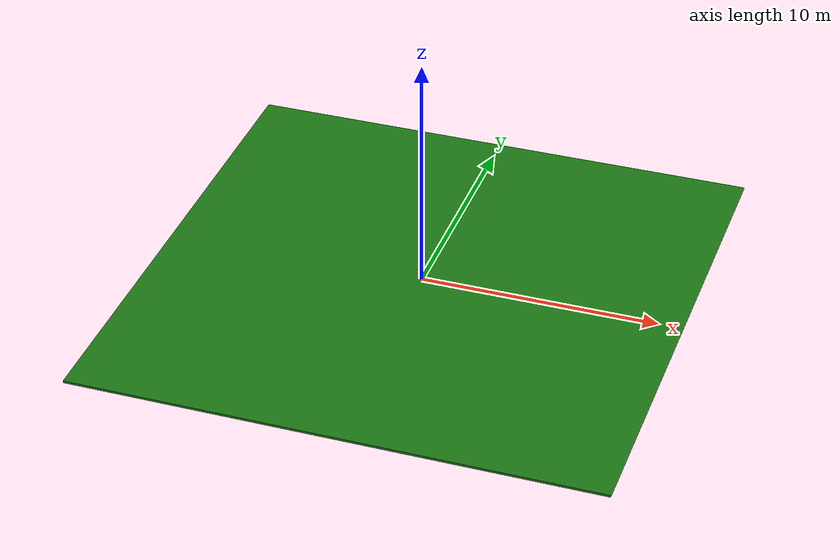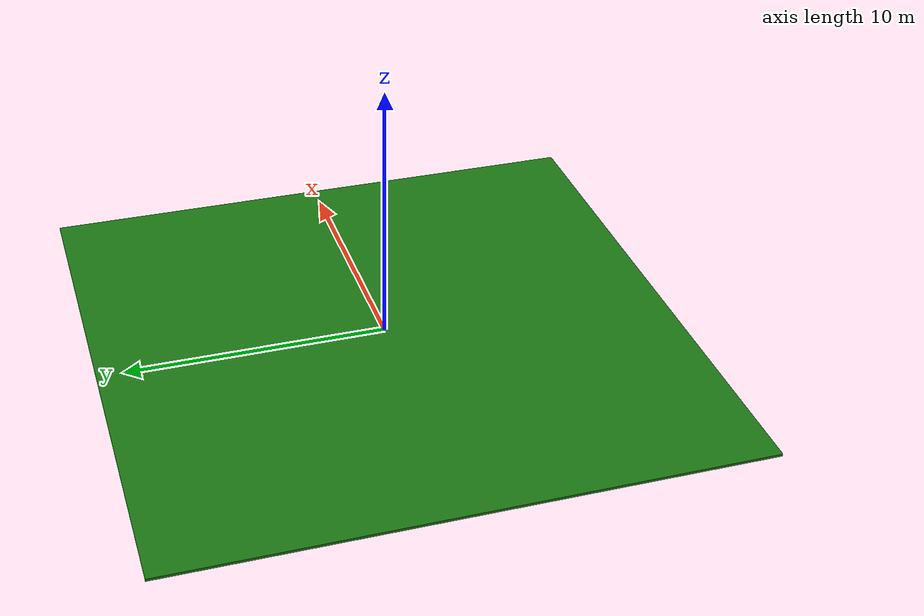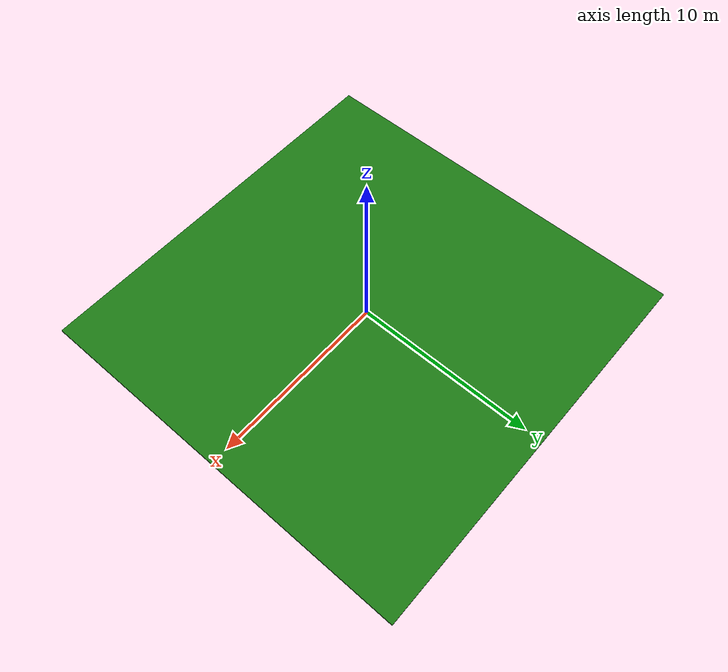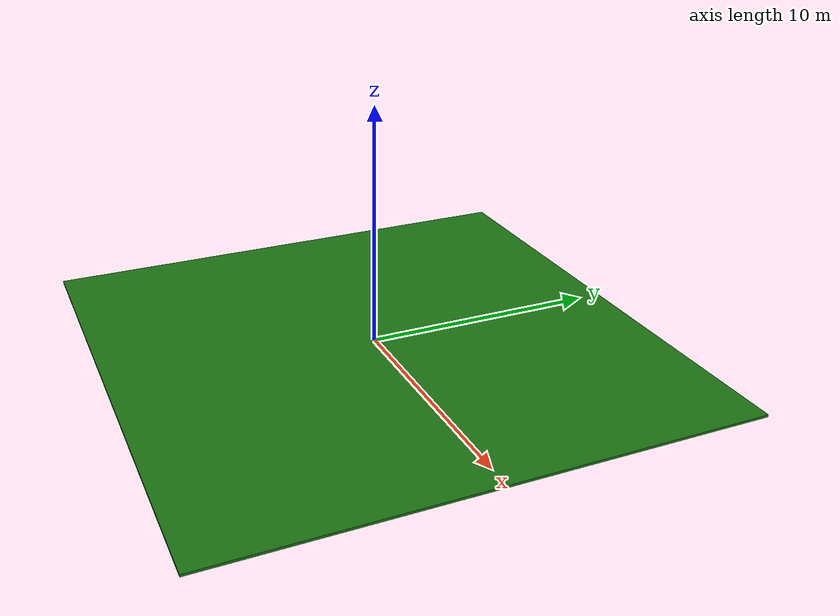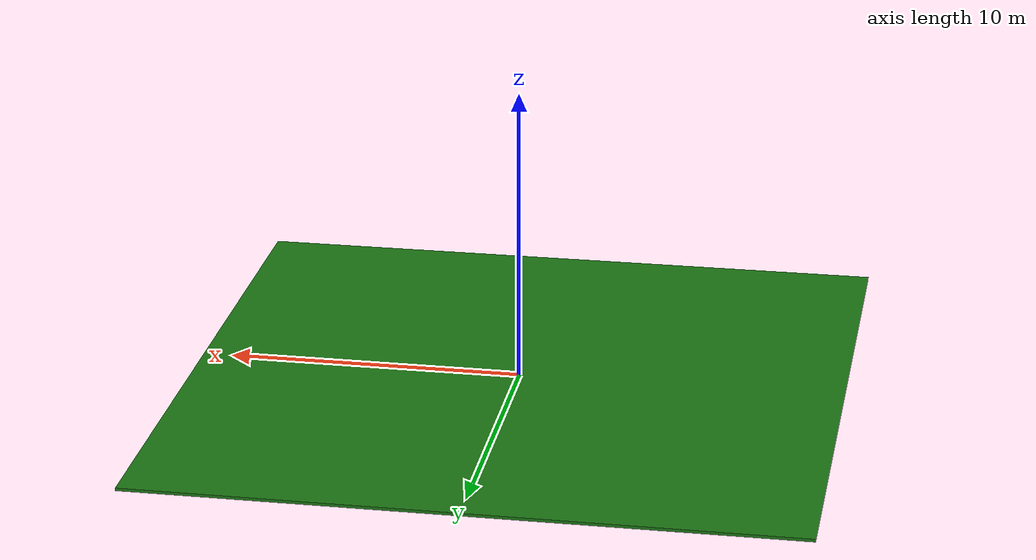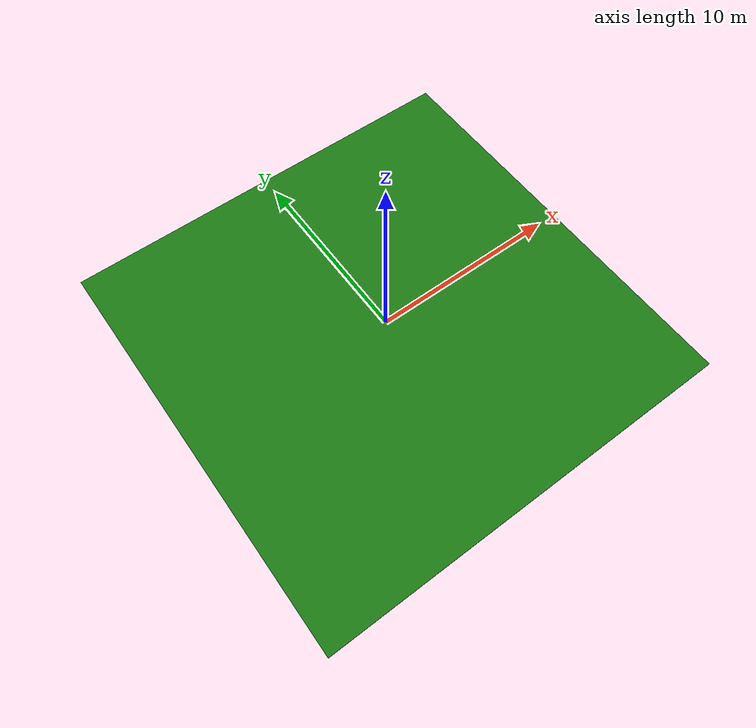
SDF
<?xml version="1.0"?>
<sdf version="1.9">

  <world name="lawn_world">

    <physics name="1ms" type="ignored">
      <max_step_size>0.001</max_step_size>
      <real_time_factor>2.0</real_time_factor>
    </physics>

    <spherical_coordinates>
      <surface_model>EARTH_WGS84</surface_model>
      <latitude_deg>45.0</latitude_deg>
      <longitude_deg>9.0</longitude_deg>
      <elevation>0</elevation>
      <heading_deg>0</heading_deg>
    </spherical_coordinates>

    <plugin
        filename="gz-sim-physics-system"
        name="gz::sim::systems::Physics">
    </plugin>

    <plugin
        filename="gz-sim-user-commands-system"
        name="gz::sim::systems::UserCommands">
    </plugin>

    <plugin
        filename="gz-sim-scene-broadcaster-system"
        name="gz::sim::systems::SceneBroadcaster">
    </plugin>

    <plugin
        filename="gz-sim-contact-system"
        name="gz::sim::systems::Contact">
    </plugin>

    <plugin
        filename="gz-sim-sensors-system"
        name="gz::sim::systems::Sensors">
      <render_engine>ogre2</render_engine>
    </plugin>

    <plugin
        filename="gz-sim-imu-system"
        name="gz::sim::systems::Imu">
    </plugin>

    <plugin
        filename="gz-sim-navsat-system"
        name="gz::sim::systems::NavSat">
    </plugin>

    <!-- Same GUI layout gz-sim uses by default, plus a Video Recorder button
         so the simulation can be recorded to an mp4 from the toolbar. -->
    <gui fullscreen="0">

      <!-- 3D scene -->
      <plugin filename="MinimalScene" name="3D View">
        <gz-gui>
          <title>3D View</title>
          <property type="bool" key="showTitleBar">false</property>
          <property type="string" key="state">docked</property>
        </gz-gui>

        <engine>ogre2</engine>
        <scene>scene</scene>
        <ambient_light>0.4 0.4 0.4</ambient_light>
        <background_color>0.8 0.8 0.8</background_color>
        <camera_pose>-6 0 6 0 0.5 0</camera_pose>
      </plugin>

      <!-- Plugins that add functionality to the scene -->
      <plugin filename="EntityContextMenuPlugin" name="Entity context menu">
        <gz-gui>
          <property key="state" type="string">floating</property>
          <property key="width" type="double">5</property>
          <property key="height" type="double">5</property>
          <property key="showTitleBar" type="bool">false</property>
        </gz-gui>
      </plugin>
      <plugin filename="GzSceneManager" name="Scene Manager">
        <gz-gui>
          <property key="resizable" type="bool">false</property>
          <property key="width" type="double">5</property>
          <property key="height" type="double">5</property>
          <property key="state" type="string">floating</property>
          <property key="showTitleBar" type="bool">false</property>
        </gz-gui>
      </plugin>
      <plugin filename="InteractiveViewControl" name="Interactive view control">
        <gz-gui>
          <property key="resizable" type="bool">false</property>
          <property key="width" type="double">5</property>
          <property key="height" type="double">5</property>
          <property key="state" type="string">floating</property>
          <property key="showTitleBar" type="bool">false</property>
        </gz-gui>
      </plugin>
      <plugin filename="CameraTracking" name="Camera Tracking">
        <gz-gui>
          <property key="resizable" type="bool">false</property>
          <property key="width" type="double">5</property>
          <property key="height" type="double">5</property>
          <property key="state" type="string">floating</property>
          <property key="showTitleBar" type="bool">false</property>
        </gz-gui>
      </plugin>
      <plugin filename="MarkerManager" name="Marker manager">
        <gz-gui>
          <property key="resizable" type="bool">false</property>
          <property key="width" type="double">5</property>
          <property key="height" type="double">5</property>
          <property key="state" type="string">floating</property>
          <property key="showTitleBar" type="bool">false</property>
        </gz-gui>
      </plugin>
      <plugin filename="SelectEntities" name="Select Entities">
        <gz-gui>
          <property key="resizable" type="bool">false</property>
          <property key="width" type="double">5</property>
          <property key="height" type="double">5</property>
          <property key="state" type="string">floating</property>
          <property key="showTitleBar" type="bool">false</property>
        </gz-gui>
      </plugin>
      <plugin filename="Spawn" name="Spawn Entities">
        <gz-gui>
          <property key="resizable" type="bool">false</property>
          <property key="width" type="double">5</property>
          <property key="height" type="double">5</property>
          <property key="state" type="string">floating</property>
          <property key="showTitleBar" type="bool">false</property>
        </gz-gui>
      </plugin>
      <plugin filename="VisualizationCapabilities" name="Visualization Capabilities">
        <gz-gui>
          <property key="resizable" type="bool">false</property>
          <property key="width" type="double">5</property>
          <property key="height" type="double">5</property>
          <property key="state" type="string">floating</property>
          <property key="showTitleBar" type="bool">false</property>
        </gz-gui>
      </plugin>

      <!-- World control -->
      <plugin filename="WorldControl" name="World control">
        <gz-gui>
          <title>World control</title>
          <property type="bool" key="showTitleBar">false</property>
          <property type="bool" key="resizable">false</property>
          <property type="double" key="height">72</property>
          <property type="double" key="z">1</property>

          <property type="string" key="state">floating</property>
          <anchors target="3D View">
            <line own="left" target="left"/>
            <line own="bottom" target="bottom"/>
          </anchors>
        </gz-gui>

        <play_pause>true</play_pause>
        <step>true</step>
        <start_paused>true</start_paused>
        <use_event>true</use_event>
      </plugin>

      <!-- World statistics -->
      <plugin filename="WorldStats" name="World stats">
        <gz-gui>
          <title>World stats</title>
          <property type="bool" key="showTitleBar">false</property>
          <property type="bool" key="resizable">false</property>
          <property type="double" key="height">110</property>
          <property type="double" key="width">290</property>
          <property type="double" key="z">1</property>

          <property type="string" key="state">floating</property>
          <anchors target="3D View">
            <line own="right" target="right"/>
            <line own="bottom" target="bottom"/>
          </anchors>
        </gz-gui>

        <sim_time>true</sim_time>
        <real_time>true</real_time>
        <real_time_factor>true</real_time_factor>
        <iterations>true</iterations>
      </plugin>

      <!-- Insert simple shapes -->
      <plugin filename="Shapes" name="Shapes">
        <gz-gui>
          <property key="resizable" type="bool">false</property>
          <property key="x" type="double">0</property>
          <property key="y" type="double">0</property>
          <property key="width" type="double">300</property>
          <property key="height" type="double">50</property>
          <property key="state" type="string">floating</property>
          <property key="showTitleBar" type="bool">false</property>
          <property key="cardBackground" type="string">#666666</property>
        </gz-gui>
      </plugin>

      <!-- Insert lights -->
      <plugin filename="Lights" name="Lights">
        <gz-gui>
          <property key="resizable" type="bool">false</property>
          <property key="x" type="double">300</property>
          <property key="y" type="double">0</property>
          <property key="width" type="double">150</property>
          <property key="height" type="double">50</property>
          <property key="state" type="string">floating</property>
          <property key="showTitleBar" type="bool">false</property>
          <property key="cardBackground" type="string">#666666</property>
        </gz-gui>
      </plugin>

      <!-- Translate / rotate -->
      <plugin filename="TransformControl" name="Transform control">
        <gz-gui>
          <property key="resizable" type="bool">false</property>
          <property key="x" type="double">0</property>
          <property key="y" type="double">50</property>
          <property key="width" type="double">250</property>
          <property key="height" type="double">50</property>
          <property key="state" type="string">floating</property>
          <property key="showTitleBar" type="bool">false</property>
          <property key="cardBackground" type="string">#777777</property>
        </gz-gui>
      </plugin>

      <!-- Screenshot -->
      <plugin filename="Screenshot" name="Screenshot">
        <gz-gui>
          <property key="resizable" type="bool">false</property>
          <property key="x" type="double">250</property>
          <property key="y" type="double">50</property>
          <property key="width" type="double">50</property>
          <property key="height" type="double">50</property>
          <property key="state" type="string">floating</property>
          <property key="showTitleBar" type="bool">false</property>
          <property key="cardBackground" type="string">#777777</property>
        </gz-gui>
      </plugin>

      <!-- Copy/Paste -->
      <plugin filename="CopyPaste" name="CopyPaste">
        <gz-gui>
          <property key="resizable" type="bool">false</property>
          <property key="x" type="double">300</property>
          <property key="y" type="double">50</property>
          <property key="width" type="double">100</property>
          <property key="height" type="double">50</property>
          <property key="state" type="string">floating</property>
          <property key="showTitleBar" type="bool">false</property>
          <property key="cardBackground" type="string">#777777</property>
        </gz-gui>
      </plugin>

      <!-- Inspector -->
      <plugin filename="ComponentInspector" name="Component inspector">
        <gz-gui>
          <property type="bool" key="showTitleBar">false</property>
          <property type="string" key="state">docked</property>
        </gz-gui>
      </plugin>

      <!-- Entity tree -->
      <plugin filename="EntityTree" name="Entity tree">
        <gz-gui>
          <property type="bool" key="showTitleBar">false</property>
          <property type="string" key="state">docked</property>
        </gz-gui>
      </plugin>

      <!-- Video recorder: adds a record button to the toolbar, next to Copy/Paste -->
      <plugin filename="VideoRecorder" name="VideoRecorder">
        <gz-gui>
          <property key="resizable" type="bool">false</property>
          <property key="x" type="double">400</property>
          <property key="y" type="double">50</property>
          <property key="width" type="double">50</property>
          <property key="height" type="double">50</property>
          <property key="state" type="string">floating</property>
          <property key="showTitleBar" type="bool">false</property>
          <property key="cardBackground" type="string">#777777</property>
        </gz-gui>

        <record_video>
          <use_sim_time>true</use_sim_time>
          <lockstep>false</lockstep>
          <bitrate>4000000</bitrate>
        </record_video>
      </plugin>
    </gui>

    <!-- Sunlight -->
    <light name="sun" type="directional">
      <cast_shadows>true</cast_shadows>

      <pose>0 0 10 0 0 0</pose>

      <diffuse>0.8 0.8 0.8 1</diffuse>
      <specular>0.2 0.2 0.2 1</specular>

      <direction>-0.5 0.1 -0.9</direction>
    </light>

    <!-- Lawn -->
    <model name="lawn">
      <static>true</static>

      <link name="lawn_link">
        <!-- top surface sits at world z=0, matching the robot's wheel-contact assumption -->
        <pose>0 0 -0.05 0 0 0</pose>

        <!-- Physical surface -->
        <collision name="lawn_collision">
          <geometry>
            <box>
              <size>22 22 0.10</size>
            </box>
          </geometry>

          <surface>
            <friction>
              <ode>
                <mu>0.8</mu>
                <mu2>0.8</mu2>
              </ode>
            </friction>
          </surface>
        </collision>

        <!-- Visible green surface -->
        <visual name="lawn_visual">
          <geometry>
            <box>
              <size>22 22 0.10</size>
            </box>
          </geometry>

          <material>
            <ambient>0.08 0.30 0.05 1</ambient>
            <diffuse>0.10 0.45 0.07 1</diffuse>
            <specular>0.02 0.02 0.02 1</specular>
          </material>
        </visual>

      </link>
    </model>

  </world>

</sdf>
